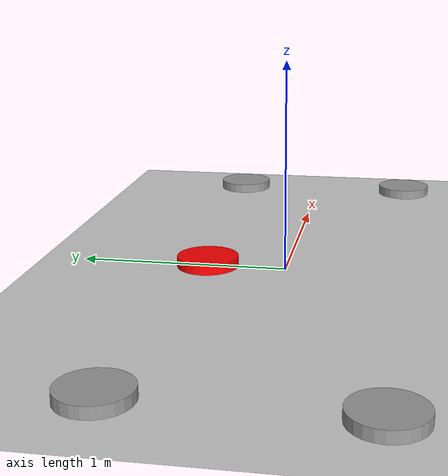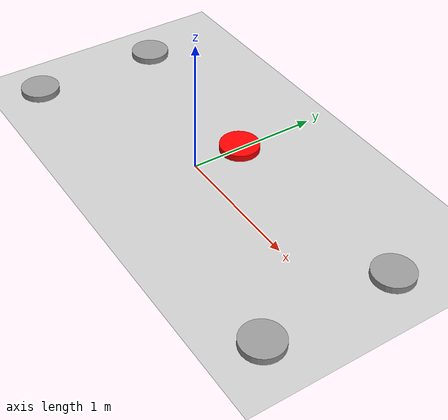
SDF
<sdf version="1.7">
 <world name="default">
  <light name="sun" type="directional">
   <pose>0 0 10 0 -0 0</pose>
   <diffuse>0.8 0.8 0.8 1</diffuse>
   <specular>0.2 0.2 0.2 1</specular>
   <attenuation>
    <range>1000</range>
    <constant>0.9</constant>
    <linear>0.01</linear>
    <quadratic>0.001</quadratic>
   </attenuation>
   <direction>-0.5 0.1 -0.9</direction>
   <spot><inner_angle>0</inner_angle><outer_angle>0</outer_angle><falloff>0</falloff></spot>
  </light>
  <model name="ground_plane">
   <static>1</static>
   <link name="link">
    <collision name="collision">
     <geometry><plane><normal>0 0 1</normal><size>100 100</size></plane></geometry>
     <surface><friction><ode><mu>100</mu><mu2>50</mu2></ode></friction></surface>
    </collision>
    <visual name="visual">
     <cast_shadows>0</cast_shadows>
     <geometry><plane><normal>0 0 1</normal><size>100 100</size></plane></geometry>
     <material>
      <script><uri>file://media/materials/scripts/gazebo.material</uri><name>Gazebo/Grey</name></script>
     </material>
    </visual>
   </link>
  </model>
  <gravity>0 0 -9.8</gravity>
  <magnetic_field>6e-06 2.3e-05 -4.2e-05</magnetic_field>
  <atmosphere type="adiabatic"/>
  <physics type="ode">
   <max_step_size>0.001</max_step_size>
   <real_time_factor>1</real_time_factor>
   <real_time_update_rate>1000</real_time_update_rate>
  </physics>
  <scene><ambient>0.4 0.4 0.4 1</ambient><background>0.7 0.7 0.7 1</background><shadows>1</shadows></scene>
  <spherical_coordinates>
   <surface_model>EARTH_WGS84</surface_model>
   <latitude_deg>0</latitude_deg>
   <longitude_deg>0</longitude_deg>
   <elevation>0</elevation>
   <heading_deg>0</heading_deg>
  </spherical_coordinates>
  <model name="obstacle_marker">
   <link name="link_0">
    <inertial>
     <mass>1</mass>
     <inertia><ixx>0.145833</ixx><ixy>0</ixy><ixz>0</ixz><iyy>0.145833</iyy><iyz>0</iyz><izz>0.125</izz></inertia>
    </inertial>
    <visual name="visual">
     <geometry><cylinder><radius>0.15</radius><length>0.05</length></cylinder></geometry>
     <material>
      <lighting>1</lighting>
      <script><uri>file://media/materials/scripts/gazebo.material</uri><name>Gazebo/Grey</name></script>
      <shader type="pixel"><normal_map>__default__</normal_map></shader>
      <ambient>1 0 0 1</ambient>
      <diffuse>1 0 0 1</diffuse>
      <specular>1 0 0 1</specular>
      <emissive>1 0 0 1</emissive>
     </material>
    </visual>
    <collision name="collision">
     <geometry><cylinder><radius>0.15</radius><length>0.05</length></cylinder></geometry>
     <surface>
      <friction>
       <ode><mu>1</mu><mu2>1</mu2><fdir1>0 0 0</fdir1><slip1>0</slip1><slip2>0</slip2></ode>
       <torsional>
        <coefficient>1</coefficient>
        <patch_radius>0</patch_radius>
        <surface_radius>0</surface_radius>
        <use_patch_radius>1</use_patch_radius>
        <ode><slip>0</slip></ode>
       </torsional>
      </friction>
      <bounce><restitution_coefficient>0</restitution_coefficient><threshold>1e+06</threshold></bounce>
      <contact>
       <collide_without_contact>0</collide_without_contact>
       <collide_without_contact_bitmask>1</collide_without_contact_bitmask>
       <collide_bitmask>1</collide_bitmask>
       <ode>
        <soft_cfm>0</soft_cfm>
        <soft_erp>0.2</soft_erp>
        <kp>1e+13</kp>
        <kd>1</kd>
        <max_vel>0.01</max_vel>
        <min_depth>0</min_depth>
       </ode>
       <bullet>
        <split_impulse>1</split_impulse>
        <split_impulse_penetration_threshold>-0.01</split_impulse_penetration_threshold>
        <soft_cfm>0</soft_cfm>
        <soft_erp>0.2</soft_erp>
        <kp>1e+13</kp>
        <kd>1</kd>
       </bullet>
      </contact>
     </surface>
    </collision>
   </link>
   <static>0</static>
   <pose>0 0.38 0.024994 0 -0 0</pose>
  </model>
  <model name="waypoint_marker">
   <link name="link_0">
    <inertial>
     <mass>1</mass>
     <inertia><ixx>0.145833</ixx><ixy>0</ixy><ixz>0</ixz><iyy>0.145833</iyy><iyz>0</iyz><izz>0.125</izz></inertia>
    </inertial>
    <pose>0.056218 -0.034247 0.5 0 -0 0</pose>
    <visual name="visual">
     <geometry><cylinder><radius>0.15</radius><length>0.05</length></cylinder></geometry>
     <material>
      <lighting>1</lighting>
      <script><uri>file://media/materials/scripts/gazebo.material</uri><name>Gazebo/Grey</name></script>
      <shader type="pixel"><normal_map>__default__</normal_map></shader>
      <ambient>1 1 1 1</ambient>
      <diffuse>1 1 1 1</diffuse>
      <specular>1 1 1 1</specular>
      <emissive>1 1 1 1</emissive>
     </material>
    </visual>
    <collision name="collision">
     <geometry><cylinder><radius>0.15</radius><length>0.05</length></cylinder></geometry>
     <surface>
      <friction>
       <ode><mu>1</mu><mu2>1</mu2><fdir1>0 0 0</fdir1><slip1>0</slip1><slip2>0</slip2></ode>
       <torsional>
        <coefficient>1</coefficient>
        <patch_radius>0</patch_radius>
        <surface_radius>0</surface_radius>
        <use_patch_radius>1</use_patch_radius>
        <ode><slip>0</slip></ode>
       </torsional>
      </friction>
      <bounce><restitution_coefficient>0</restitution_coefficient><threshold>1e+06</threshold></bounce>
      <contact>
       <collide_without_contact>0</collide_without_contact>
       <collide_without_contact_bitmask>1</collide_without_contact_bitmask>
       <collide_bitmask>1</collide_bitmask>
       <ode>
        <soft_cfm>0</soft_cfm>
        <soft_erp>0.2</soft_erp>
        <kp>1e+13</kp>
        <kd>1</kd>
        <max_vel>0.01</max_vel>
        <min_depth>0</min_depth>
       </ode>
       <bullet>
        <split_impulse>1</split_impulse>
        <split_impulse_penetration_threshold>-0.01</split_impulse_penetration_threshold>
        <soft_cfm>0</soft_cfm>
        <soft_erp>0.2</soft_erp>
        <kp>1e+13</kp>
        <kd>1</kd>
       </bullet>
      </contact>
     </surface>
    </collision>
   </link>
   <static>0</static>
   <pose>1.5 0.499999 -0.475008 -2e-06 -2e-06 0</pose>
  </model>
  <model name="waypoint_marker_clone">
   <link name="link_0">
    <inertial>
     <mass>1</mass>
     <inertia><ixx>0.145833</ixx><ixy>0</ixy><ixz>0</ixz><iyy>0.145833</iyy><iyz>0</iyz><izz>0.125</izz></inertia>
    </inertial>
    <pose>0.056218 -0.034247 0.5 0 -0 0</pose>
    <visual name="visual">
     <geometry><cylinder><radius>0.15</radius><length>0.05</length></cylinder></geometry>
     <material>
      <lighting>1</lighting>
      <script><uri>file://media/materials/scripts/gazebo.material</uri><name>Gazebo/Grey</name></script>
      <shader type="pixel"><normal_map>__default__</normal_map></shader>
      <ambient>1 1 1 1</ambient>
      <diffuse>1 1 1 1</diffuse>
      <specular>1 1 1 1</specular>
      <emissive>1 1 1 1</emissive>
     </material>
    </visual>
    <collision name="collision">
     <geometry><cylinder><radius>0.15</radius><length>0.05</length></cylinder></geometry>
     <surface>
      <friction>
       <ode><mu>1</mu><mu2>1</mu2><fdir1>0 0 0</fdir1><slip1>0</slip1><slip2>0</slip2></ode>
       <torsional>
        <coefficient>1</coefficient>
        <patch_radius>0</patch_radius>
        <surface_radius>0</surface_radius>
        <use_patch_radius>1</use_patch_radius>
        <ode><slip>0</slip></ode>
       </torsional>
      </friction>
      <bounce><restitution_coefficient>0</restitution_coefficient><threshold>1e+06</threshold></bounce>
      <contact>
       <collide_without_contact>0</collide_without_contact>
       <collide_without_contact_bitmask>1</collide_without_contact_bitmask>
       <collide_bitmask>1</collide_bitmask>
       <ode>
        <soft_cfm>0</soft_cfm>
        <soft_erp>0.2</soft_erp>
        <kp>1e+13</kp>
        <kd>1</kd>
        <max_vel>0.01</max_vel>
        <min_depth>0</min_depth>
       </ode>
       <bullet>
        <split_impulse>1</split_impulse>
        <split_impulse_penetration_threshold>-0.01</split_impulse_penetration_threshold>
        <soft_cfm>0</soft_cfm>
        <soft_erp>0.2</soft_erp>
        <kp>1e+13</kp>
        <kd>1</kd>
       </bullet>
      </contact>
     </surface>
    </collision>
   </link>
   <static>0</static>
   <pose>-1.5 0.499999 -0.475008 -2e-06 -1e-06 0</pose>
  </model>
  <model name="waypoint_marker_clone_0">
   <link name="link_0">
    <inertial>
     <mass>1</mass>
     <inertia><ixx>0.145833</ixx><ixy>0</ixy><ixz>0</ixz><iyy>0.145833</iyy><iyz>0</iyz><izz>0.125</izz></inertia>
    </inertial>
    <pose>0.056218 -0.034247 0.5 0 -0 0</pose>
    <visual name="visual">
     <geometry><cylinder><radius>0.15</radius><length>0.05</length></cylinder></geometry>
     <material>
      <lighting>1</lighting>
      <script><uri>file://media/materials/scripts/gazebo.material</uri><name>Gazebo/Grey</name></script>
      <shader type="pixel"><normal_map>__default__</normal_map></shader>
      <ambient>1 1 1 1</ambient>
      <diffuse>1 1 1 1</diffuse>
      <specular>1 1 1 1</specular>
      <emissive>1 1 1 1</emissive>
     </material>
    </visual>
    <collision name="collision">
     <geometry><cylinder><radius>0.15</radius><length>0.05</length></cylinder></geometry>
     <surface>
      <friction>
       <ode><mu>1</mu><mu2>1</mu2><fdir1>0 0 0</fdir1><slip1>0</slip1><slip2>0</slip2></ode>
       <torsional>
        <coefficient>1</coefficient>
        <patch_radius>0</patch_radius>
        <surface_radius>0</surface_radius>
        <use_patch_radius>1</use_patch_radius>
        <ode><slip>0</slip></ode>
       </torsional>
      </friction>
      <bounce><restitution_coefficient>0</restitution_coefficient><threshold>1e+06</threshold></bounce>
      <contact>
       <collide_without_contact>0</collide_without_contact>
       <collide_without_contact_bitmask>1</collide_without_contact_bitmask>
       <collide_bitmask>1</collide_bitmask>
       <ode>
        <soft_cfm>0</soft_cfm>
        <soft_erp>0.2</soft_erp>
        <kp>1e+13</kp>
        <kd>1</kd>
        <max_vel>0.01</max_vel>
        <min_depth>0</min_depth>
       </ode>
       <bullet>
        <split_impulse>1</split_impulse>
        <split_impulse_penetration_threshold>-0.01</split_impulse_penetration_threshold>
        <soft_cfm>0</soft_cfm>
        <soft_erp>0.2</soft_erp>
        <kp>1e+13</kp>
        <kd>1</kd>
       </bullet>
      </contact>
     </surface>
    </collision>
   </link>
   <static>0</static>
   <pose>1.5 -0.500001 -0.475008 -2e-06 -2e-06 0</pose>
  </model>
  <model name="waypoint_marker_clone_1">
   <link name="link_0">
    <inertial>
     <mass>1</mass>
     <inertia><ixx>0.145833</ixx><ixy>0</ixy><ixz>0</ixz><iyy>0.145833</iyy><iyz>0</iyz><izz>0.125</izz></inertia>
    </inertial>
    <pose>0.056218 -0.034247 0.5 0 -0 0</pose>
    <visual name="visual">
     <geometry><cylinder><radius>0.15</radius><length>0.05</length></cylinder></geometry>
     <material>
      <lighting>1</lighting>
      <script><uri>file://media/materials/scripts/gazebo.material</uri><name>Gazebo/Grey</name></script>
      <shader type="pixel"><normal_map>__default__</normal_map></shader>
      <ambient>1 1 1 1</ambient>
      <diffuse>1 1 1 1</diffuse>
      <specular>1 1 1 1</specular>
      <emissive>1 1 1 1</emissive>
     </material>
    </visual>
    <collision name="collision">
     <geometry><cylinder><radius>0.15</radius><length>0.05</length></cylinder></geometry>
     <surface>
      <friction>
       <ode><mu>1</mu><mu2>1</mu2><fdir1>0 0 0</fdir1><slip1>0</slip1><slip2>0</slip2></ode>
       <torsional>
        <coefficient>1</coefficient>
        <patch_radius>0</patch_radius>
        <surface_radius>0</surface_radius>
        <use_patch_radius>1</use_patch_radius>
        <ode><slip>0</slip></ode>
       </torsional>
      </friction>
      <bounce><restitution_coefficient>0</restitution_coefficient><threshold>1e+06</threshold></bounce>
      <contact>
       <collide_without_contact>0</collide_without_contact>
       <collide_without_contact_bitmask>1</collide_without_contact_bitmask>
       <collide_bitmask>1</collide_bitmask>
       <ode>
        <soft_cfm>0</soft_cfm>
        <soft_erp>0.2</soft_erp>
        <kp>1e+13</kp>
        <kd>1</kd>
        <max_vel>0.01</max_vel>
        <min_depth>0</min_depth>
       </ode>
       <bullet>
        <split_impulse>1</split_impulse>
        <split_impulse_penetration_threshold>-0.01</split_impulse_penetration_threshold>
        <soft_cfm>0</soft_cfm>
        <soft_erp>0.2</soft_erp>
        <kp>1e+13</kp>
        <kd>1</kd>
       </bullet>
      </contact>
     </surface>
    </collision>
   </link>
   <static>0</static>
   <pose>-1.5 -0.500001 -0.475008 -2e-06 -1e-06 0</pose>
  </model>
 </world>
</sdf>
